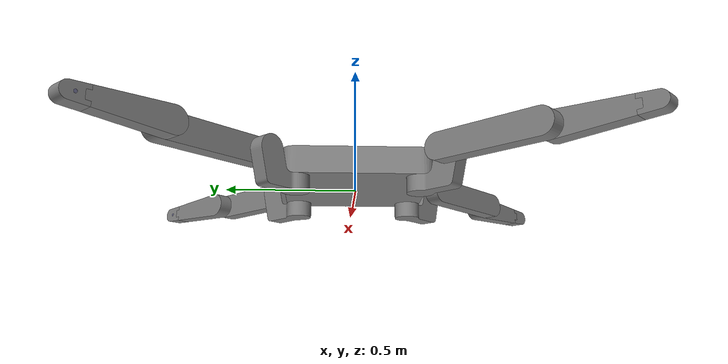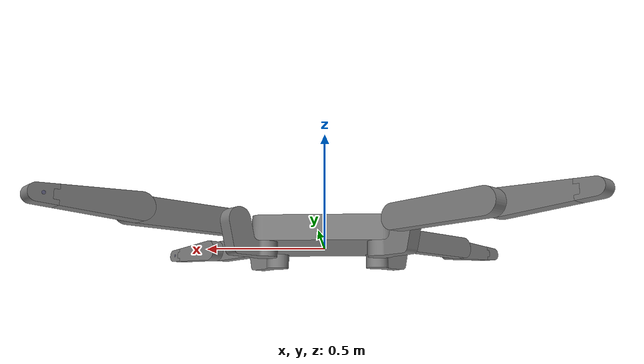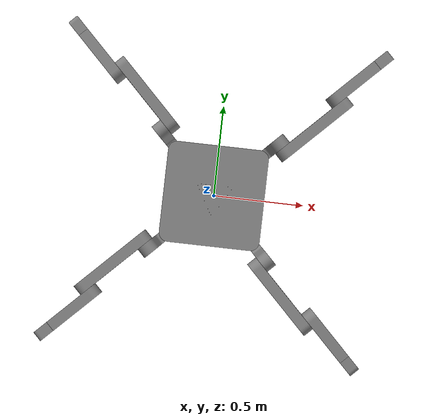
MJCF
<mujoco model="crawler">

    <compiler angle="radian" autolimits="true"/>

    <default>

        <default class="visual">
            <geom type="mesh" density="0" contype="0" conaffinity="0" group="2"/>
        </default>

        <default class="collision">
            <geom density="0" contype="1" conaffinity="1" group="3"
                  rgba="0.4 0.8 0.4 0.4"/>
        </default>
    </default>

    <asset>
        <mesh name="base"  file="assets/base.stl"  scale="0.001 0.001 0.001"/>
        <mesh name="coxa"  file="assets/coxa.stl"  scale="0.001 0.001 0.001"/>
        <mesh name="femur" file="assets/femur.stl" scale="0.001 0.001 0.001"/>
        <mesh name="tibia" file="assets/tibia.stl" scale="0.001 0.001 0.001"/>
        <mesh name="foot"  file="assets/foot.stl"  scale="0.001 0.001 0.001"/>
    </asset>

    <worldbody>
        <light directional="true" pos="-0.5 0.5 3" dir="0 0 -1"/>

        <body name="base" pos="0.0 0.0 0.0" euler="-0.0 0.0 -0.0">
            <freejoint/>
            <geom name="base_geom" class="visual" mesh="base" pos="0 0 0" euler="0 0 0"/>

            <geom name="base_collision" class="collision" type="box" mesh="base"/>

            <inertial mass="234.43434399291593" pos="7.796300326790456e-17 3.898150163395228e-17 0.049742107233483004" fullinertia="6.060186354699191 6.060186354699188 11.732904462396002 8.773058652877807e-15 5.436026067073493e-16 4.545733586219623e-16"/>
            <site name="imu" pos="0.0 0.0 0.05" size="0.03" rgba=".2 .2 .6 .3"/>

            <!--Leg 1-->

            <body name="leg_1_coxa" pos="-0.3239949493661167 -0.32399494936611684 -0.029999999999995097" euler="1.5707963267948966 0.7853981633974483 -1.1842378929333265e-15">
                <joint name="base_leg_1_coxa" type="hinge" axis="-1.184237892933326e-15 0.9999999999999994 9.860761315262642e-32" pos="0.14000000000000007 0.029999999999995246 -8.326672684688674e-17"/>
                <geom name="leg_1_coxa_geom"      class="visual"     mesh="coxa" pos="0 0 0" euler="0 0 0"/>
                <geom name="leg_1_coxa_collision" class="collision"   type="capsule" mesh="coxa"/>
                <inertial mass="12.32073453155839" pos="0.05402213314212047 0.03646425722139935 -2.4286128663675296e-17" fullinertia="0.03396894349663161 0.056375594219793865 0.08049059488507017 0.02258509432851066 2.2270622445613532e-33 1.7347234759768125e-18"/>

                <body name="leg_1_femur" pos="-0.40000000000000036 0.10000000000000009 -0.0900000000000004" euler="2.9582283945787925e-31 0.0 4.5920860387590216e-17">
                    <joint name="leg_1_coxa_leg_1_femur" type="hinge" axis="2.220446049250313e-16 3.925232361368096e-17 -1.0000003094489522" pos="0.3999999283928757 -4.9454878757141094e-15 0.06000028770137983"/>
                    <geom name="leg_1_femur_geom"      class="visual"   mesh="femur" pos="0 0 0" euler="0 0 0"/>
                    <geom name="leg_1_femur_collision" class="collision" type="capsule" mesh="femur"/>
                    <inertial mass="22.539225349601974" pos="0.20000000000000007 1.3323016437104531e-17 0.029999999999999985" fullinertia="0.024773783448381013 0.4396427974324626 0.45089304567108146 1.681358468132686e-16 -5.707240235963695e-16 -1.7470784013540618e-16"/>

                    <body name="leg_1_tibia" pos="4.263256414560601e-16 0.0 0.1200000000000001" euler="-3.141592653589793 0.0 -1.5707963267948966">
                        <joint name="leg_1_femur_leg_1_tibia" type="hinge" axis="0.0 1.1102230246251565e-16 -1.0000003094489522" pos="-5.398459205688788e-15 2.2887736321475227e-07 0.06000041940540146"/>
                        <geom name="leg_1_tibia_geom"      class="visual"   mesh="tibia" pos="0 0 0" euler="0 0 0"/>
                        <geom name="leg_1_tibia_collision" class="collision" type="capsule" mesh="tibia"/>
                        <inertial mass="13.247878794023343" pos="8.288792186742524e-18 -0.11367662738338086 0.029999999999999943" fullinertia="0.12275338253184032 0.01191573194546747 0.1267203872008955 -4.468284809618678e-17 -7.850462293419021e-17 -1.343543332144037e-15"/>

                        <body name="leg_1_foot" pos="4.973799150320702e-16 1.4210854715202004e-16 -7.105427357601002e-17" euler="-2.7755575615628894e-16 1.7326462129019245e-16 3.9443045261050573e-31">                            <geom name="leg_1_foot_geom"      class="visual"   mesh="foot" pos="0 0 0" euler="0 0 0"/>
                            <geom name="leg_1_foot_collision" class="collision" type="sphere" mesh="foot" fitscale="1.1"/>
                            <site name="leg_1_foot_site" pos="0.0 -0.33 0.029" size="0.03" rgba=".2 .2 .6 .3"/>
                            <inertial mass="2.455594443706006" pos="-0.8406245830111374 -0.8406245830111243 0.07000000000000572" fullinertia="0.0020079860058377684 0.002007986005837294 0.0023406555293772335 -0.00043364943157665455 -7.17909681337716e-19 5.496228523996588e-17"/>
                        </body>
                    </body>
                </body>
            </body>

            <body name="leg_2_coxa" pos="-0.32399494936611656 0.3239949493661166 -0.02999999999999531" euler="1.570796326794898 -0.7853981633974488 1.045720633811615e-15">
                <joint name="base_leg_2_coxa" type="hinge" axis="2.3446476092208107e-16 1.0 -9.756883456373513e-16" pos="0.13999999999999985 0.029999999999995322 -5.702622598474488e-17"/>
                <geom name="leg_2_coxa_geom"      class="visual"   mesh="coxa" pos="0 0 0" euler="0 0 0"/>
                <geom name="leg_2_coxa_collision" class="collision" type="capsule" mesh="coxa"/>
                <inertial mass="12.32073453155839" pos="0.054022133142120475 0.03646425722139941 -3.904719775519564e-17" fullinertia="0.03396894349663148 0.05637559421979432 0.08049059488507002 0.022585094328510736 -2.9265287557383005e-16 1.0914481828484923e-17"/>

                <body name="leg_2_femur" pos="-0.40000000000000036 0.10000000000000009 -0.0900000000000004" euler="2.9582283945787925e-31 0.0 4.5920860387590216e-17">
                    <joint name="leg_2_coxa_leg_2_femur" type="hinge" axis="2.220446049250313e-16 3.925232361368096e-17 -1.0000003094489522" pos="0.3999999283928757 -4.9454878757141094e-15 0.06000028770137983"/>
                    <geom name="leg_2_femur_geom"      class="visual"   mesh="femur" pos="0 0 0" euler="0 0 0"/>
                    <geom name="leg_2_femur_collision" class="collision" type="capsule" mesh="femur"/>
                    <inertial mass="22.539225349601974" pos="0.20000000000000007 1.3323016437104531e-17 0.029999999999999985" fullinertia="0.024773783448381013 0.4396427974324626 0.45089304567108146 1.681358468132686e-16 -5.707240235963695e-16 -1.7470784013540618e-16"/>

                    <body name="leg_2_tibia" pos="4.263256414560601e-16 0.0 0.1200000000000001" euler="-3.141592653589793 0.0 -1.5707963267948966">
                        <joint name="leg_2_femur_leg_2_tibia" type="hinge" axis="0.0 1.1102230246251565e-16 -1.0000003094489522" pos="-5.398459205688788e-15 2.2887736321475227e-07 0.06000041940540146"/>
                        <geom name="leg_2_tibia_geom"      class="visual"   mesh="tibia" pos="0 0 0" euler="0 0 0"/>
                        <geom name="leg_2_tibia_collision" class="collision" type="capsule" mesh="tibia"/>
                        <inertial mass="13.247878794023343" pos="8.288792186742524e-18 -0.11367662738338086 0.029999999999999943" fullinertia="0.12275338253184032 0.01191573194546747 0.1267203872008955 -4.468284809618678e-17 -7.850462293419021e-17 -1.343543332144037e-15"/>

                        <body name="leg_2_foot" pos="4.973799150320702e-16 1.4210854715202004e-16 -7.105427357601002e-17" euler="-2.7755575615628894e-16 1.7326462129019245e-16 3.9443045261050573e-31">                            <geom name="leg_2_foot_geom"      class="visual"   mesh="foot" pos="0 0 0" euler="0 0 0"/>
                            <geom name="leg_2_foot_collision" class="collision" type="sphere" mesh="foot" fitscale="1.1"/>
                            <site name="leg_2_foot_site" pos="0.0 -0.33 0.029" size="0.03" rgba=".2 .2 .6 .3"/>
                            <inertial mass="2.455594443706006" pos="-0.8406245830111374 -0.8406245830111243 0.07000000000000572" fullinertia="0.0020079860058377684 0.002007986005837294 0.0023406555293772335 -0.00043364943157665455 -7.17909681337716e-19 5.496228523996588e-17"/>
                        </body>
                    </body>
                </body>
            </body>

            <body name="leg_3_coxa" pos="0.3239949493661166 0.3239949493661166 -0.029999999999994975" euler="-1.5707963267948977 -0.7853981633974482 3.141592653589791">
                <joint name="base_leg_3_coxa" type="hinge" axis="-1.8086610464098663e-15 0.9999999999999981 -7.101554364046656e-16" pos="0.1399999999999998 0.02999999999999516 -3.518245089995085e-17"/>
                <geom name="leg_3_coxa_geom"      class="visual"   mesh="coxa" pos="0 0 0" euler="0 0 0"/>
                <geom name="leg_3_coxa_collision" class="collision" type="capsule" mesh="coxa"/>
                <inertial mass="12.32073453155839" pos="0.05402213314212041 0.036464257221399246 -3.283418440414197e-17" fullinertia="0.03396894349663148 0.05637559421979331 0.08049059488506963 0.02258509432851058 -1.6175569950115575e-16 -3.656598776377609e-17"/>

                <body name="leg_3_femur" pos="-0.40000000000000036 0.10000000000000009 -0.0900000000000004" euler="2.9582283945787925e-31 0.0 4.5920860387590216e-17">
                    <joint name="leg_3_coxa_leg_3_femur" type="hinge" axis="2.220446049250313e-16 3.925232361368096e-17 -1.0000003094489522" pos="0.3999999283928757 -4.9454878757141094e-15 0.06000028770137983"/>
                    <geom name="leg_3_femur_geom"      class="visual"   mesh="femur" pos="0 0 0" euler="0 0 0"/>
                    <geom name="leg_3_femur_collision" class="collision" type="capsule" mesh="femur"/>
                    <inertial mass="22.539225349601974" pos="0.20000000000000007 1.3323016437104531e-17 0.029999999999999985" fullinertia="0.024773783448381013 0.4396427974324626 0.45089304567108146 1.681358468132686e-16 -5.707240235963695e-16 -1.7470784013540618e-16"/>

                    <body name="leg_3_tibia" pos="4.263256414560601e-16 0.0 0.1200000000000001" euler="-3.141592653589793 0.0 -1.5707963267948966">
                        <joint name="leg_3_femur_leg_3_tibia" type="hinge" axis="0.0 1.1102230246251565e-16 -1.0000003094489522" pos="-5.398459205688788e-15 2.2887736321475227e-07 0.06000041940540146"/>
                        <geom name="leg_3_tibia_geom"      class="visual"   mesh="tibia" pos="0 0 0" euler="0 0 0"/>
                        <geom name="leg_3_tibia_collision" class="collision" type="capsule" mesh="tibia"/>
                        <inertial mass="13.247878794023343" pos="8.288792186742524e-18 -0.11367662738338086 0.029999999999999943" fullinertia="0.12275338253184032 0.01191573194546747 0.1267203872008955 -4.468284809618678e-17 -7.850462293419021e-17 -1.343543332144037e-15"/>

                        <body name="leg_3_foot" pos="4.973799150320702e-16 1.4210854715202004e-16 -7.105427357601002e-17" euler="-2.7755575615628894e-16 1.7326462129019245e-16 3.9443045261050573e-31">                            <geom name="leg_3_foot_geom"      class="visual"   mesh="foot" pos="0 0 0" euler="0 0 0"/>
                            <geom name="leg_3_foot_collision" class="collision" type="sphere" mesh="foot" fitscale="1.1"/>
                            <site name="leg_3_foot_site" pos="0.0 -0.33 0.029" size="0.03" rgba=".2 .2 .6 .3"/>
                            <inertial mass="2.455594443706006" pos="-0.8406245830111374 -0.8406245830111243 0.07000000000000572" fullinertia="0.0020079860058377684 0.002007986005837294 0.0023406555293772335 -0.00043364943157665455 -7.17909681337716e-19 5.496228523996588e-17"/>
                        </body>
                    </body>
                </body>
            </body>

            <body name="leg_4_coxa" pos="0.3239949493661166 -0.32399494936611645 -0.02999999999999524" euler="-1.5707963267948968 0.7853981633974482 3.1415926535897927">
                <joint name="base_leg_4_coxa" type="hinge" axis="-7.800670040177732e-16 0.9999999999999999 -1.4536147162376828e-16" pos="0.1399999999999998 0.029999999999995367 -1.0150535880341356e-16"/>
                <geom name="leg_4_coxa_geom"      class="visual"   mesh="coxa" pos="0 0 0" euler="0 0 0"/>
                <geom name="leg_4_coxa_collision" class="collision" type="capsule" mesh="coxa"/>
                <inertial mass="12.32073453155839" pos="0.05402213314212051 0.03646425722139939 2.9393971428165913e-17" fullinertia="0.033968943496631675 0.05637559421979346 0.08049059488507031 0.02258509432851073 4.1819807827043044e-17 5.0785758843757864e-17"/>

                <body name="leg_4_femur" pos="-0.40000000000000036 0.10000000000000009 -0.0900000000000004" euler="2.9582283945787925e-31 0.0 4.5920860387590216e-17">
                    <joint name="leg_4_coxa_leg_4_femur" type="hinge" axis="2.220446049250313e-16 3.925232361368096e-17 -1.0000003094489522" pos="0.3999999283928757 -4.9454878757141094e-15 0.06000028770137983"/>
                    <geom name="leg_4_femur_geom"      class="visual"   mesh="femur" pos="0 0 0" euler="0 0 0"/>
                    <geom name="leg_4_femur_collision" class="collision" type="capsule" mesh="femur"/>
                    <inertial mass="22.539225349601974" pos="0.20000000000000007 1.3323016437104531e-17 0.029999999999999985" fullinertia="0.024773783448381013 0.4396427974324626 0.45089304567108146 1.681358468132686e-16 -5.707240235963695e-16 -1.7470784013540618e-16"/>

                    <body name="leg_4_tibia" pos="4.263256414560601e-16 0.0 0.1200000000000001" euler="-3.141592653589793 0.0 -1.5707963267948966">
                        <joint name="leg_4_femur_leg_4_tibia" type="hinge" axis="0.0 1.1102230246251565e-16 -1.0000003094489522" pos="-5.398459205688788e-15 2.2887736321475227e-07 0.06000041940540146"/>
                        <geom name="leg_4_tibia_geom"      class="visual"   mesh="tibia" pos="0 0 0" euler="0 0 0"/>
                        <geom name="leg_4_tibia_collision" class="collision" type="capsule" mesh="tibia"/>
                        <inertial mass="13.247878794023343" pos="8.288792186742524e-18 -0.11367662738338086 0.029999999999999943" fullinertia="0.12275338253184032 0.01191573194546747 0.1267203872008955 -4.468284809618678e-17 -7.850462293419021e-17 -1.343543332144037e-15"/>

                        <body name="leg_4_foot" pos="4.973799150320702e-16 1.4210854715202004e-16 -7.105427357601002e-17" euler="-2.7755575615628894e-16 1.7326462129019245e-16 3.9443045261050573e-31">                            <geom name="leg_4_foot_geom"      class="visual"   mesh="foot" pos="0 0 0" euler="0 0 0"/>
                            <geom name="leg_4_foot_collision" class="collision" type="sphere" mesh="foot" fitscale="1.1"/>
                            <site name="leg_4_foot_site" pos="0.0 -0.33 0.029" size="0.03" rgba=".2 .2 .6 .3"/>
                            <inertial mass="2.455594443706006" pos="-0.8406245830111374 -0.8406245830111243 0.07000000000000572" fullinertia="0.0020079860058377684 0.002007986005837294 0.0023406555293772335 -0.00043364943157665455 -7.17909681337716e-19 5.496228523996588e-17"/>
                        </body>
                    </body>
                </body>
            </body>

        </body>
    </worldbody>

    <contact>
        <exclude body1="leg_1_coxa" body2="leg_1_tibia"/>
        <exclude body1="leg_1_femur" body2="leg_1_foot"/>

        <exclude body1="leg_2_coxa" body2="leg_2_tibia"/>
        <exclude body1="leg_2_femur" body2="leg_2_foot"/>

        <exclude body1="leg_3_coxa" body2="leg_3_tibia"/>
        <exclude body1="leg_3_femur" body2="leg_3_foot"/>

        <exclude body1="leg_4_coxa" body2="leg_4_tibia"/>
        <exclude body1="leg_4_femur" body2="leg_4_foot"/>
    </contact>
</mujoco>
